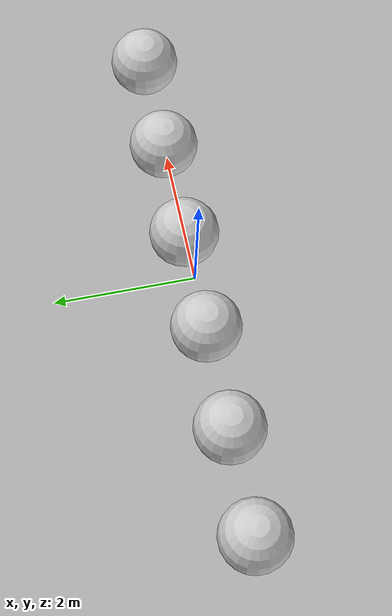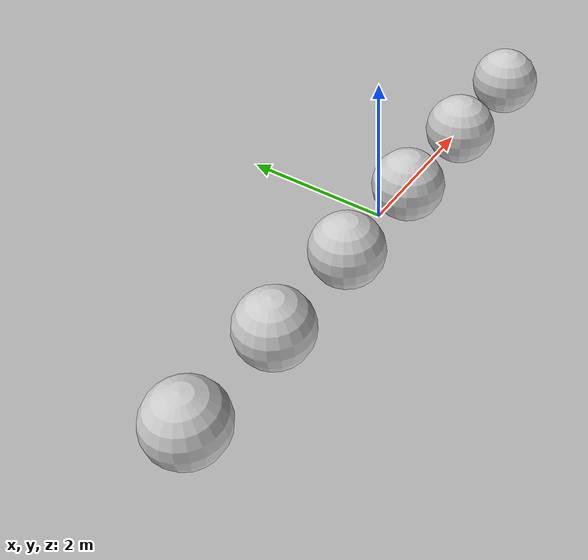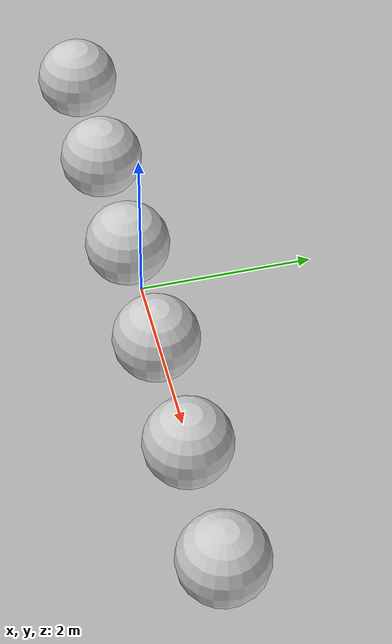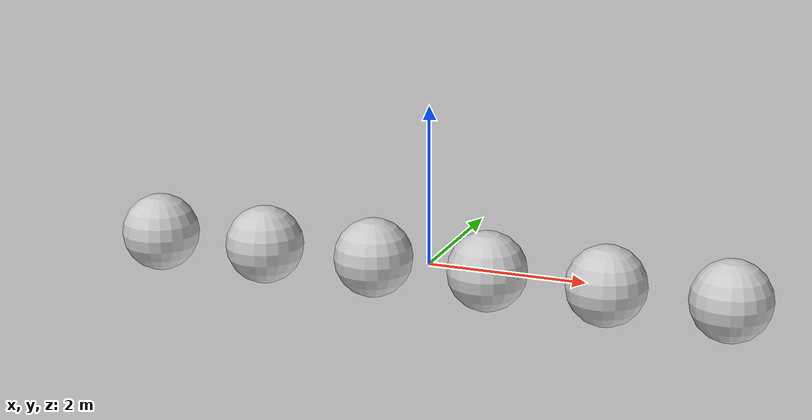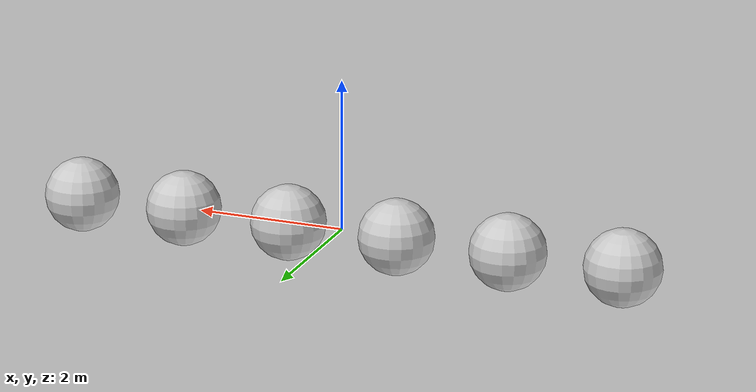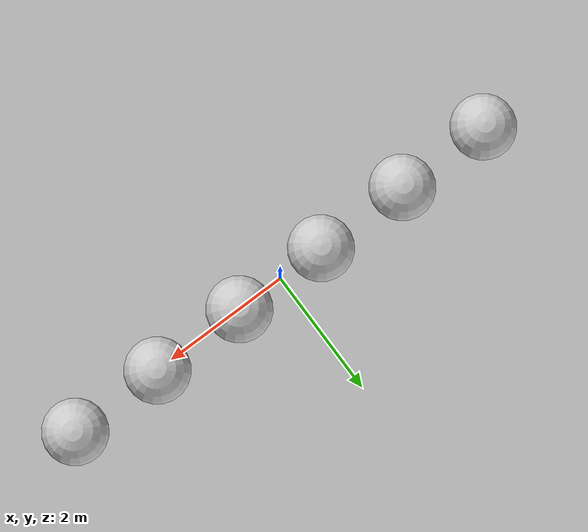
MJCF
<mujoco>
  <compiler assetdir="assets"/>
  <visual>
    <headlight diffuse="0.0 0.0 0.0" ambient="0.0 0.0 0.0" specular="0 0 0"/>
  </visual>
  <asset>
    <texture name="env_hdr" type="envhdr" file="empty_warehouse_01_2k.hdr"/>
    <material name="mat_sample_m_0_r_0" rgba="0.8 0.8 0.8 1.0" reflectance="0.5" roughness="0.0" metallic="1.0"/>
    <material name="mat_sample_m_0_r_1" rgba="0.8 0.8 0.8 1.0" reflectance="0.5" roughness="0.2" metallic="1.0"/>
    <material name="mat_sample_m_0_r_2" rgba="0.8 0.8 0.8 1.0" reflectance="0.5" roughness="0.4" metallic="1.0"/>
    <material name="mat_sample_m_0_r_3" rgba="0.8 0.8 0.8 1.0" reflectance="0.5" roughness="0.6" metallic="1.0"/>
    <material name="mat_sample_m_0_r_4" rgba="0.8 0.8 0.8 1.0" reflectance="0.5" roughness="0.8" metallic="1.0"/>
    <material name="mat_sample_m_0_r_5" rgba="0.8 0.8 0.8 1.0" reflectance="0.5" roughness="1.0" metallic="1.0"/>
  </asset>
  <worldbody>
    <camera name="CAM_Camera" pos="0.0 -25.4410686 15.067399" quat="0.8660254 0.5 0.0 0.0" fovy="9.9999997" mode="fixed"/>
    <light name="LIT_Sun" pos="0.0 0.0 4.0" dir="0.4484359 -0.3361787 -0.8281842" type="directional" diffuse="1.0 1.0 1.0" intensity="2732.0" directional="true" castshadow="true" mode="fixed"/>
    <geom name="GEO_Shader_Ball_Base_000" pos="-3.75 0.0 0.0" quat="0.9961947 0.0 0.0 0.0871558" type="sphere" size="0.5" material="mat_sample_m_0_r_0" group="2"/>
    <geom name="GEO_Shader_Ball_Base_001" pos="-2.25 0.0 0.0" quat="0.9961947 0.0 0.0 0.0871558" type="sphere" size="0.5" material="mat_sample_m_0_r_1" group="2"/>
    <geom name="GEO_Shader_Ball_Base_002" pos="-0.75 0.0 0.0" quat="0.9961947 0.0 0.0 0.0871558" type="sphere" size="0.5" material="mat_sample_m_0_r_2" group="2"/>
    <geom name="GEO_Shader_Ball_Base_003" pos="0.75 0.0 0.0" quat="0.9961947 0.0 0.0 0.0871558" type="sphere" size="0.5" material="mat_sample_m_0_r_3" group="2"/>
    <geom name="GEO_Shader_Ball_Base_004" pos="2.25 0.0 0.0" quat="0.9961947 0.0 0.0 0.0871558" type="sphere" size="0.5" material="mat_sample_m_0_r_4" group="2"/>
    <geom name="GEO_Shader_Ball_Base_005" pos="3.75 0.0 0.0" quat="0.9961947 0.0 0.0 0.0871558" type="sphere" size="0.5" material="mat_sample_m_0_r_5" group="2"/>
  </worldbody>
</mujoco>
